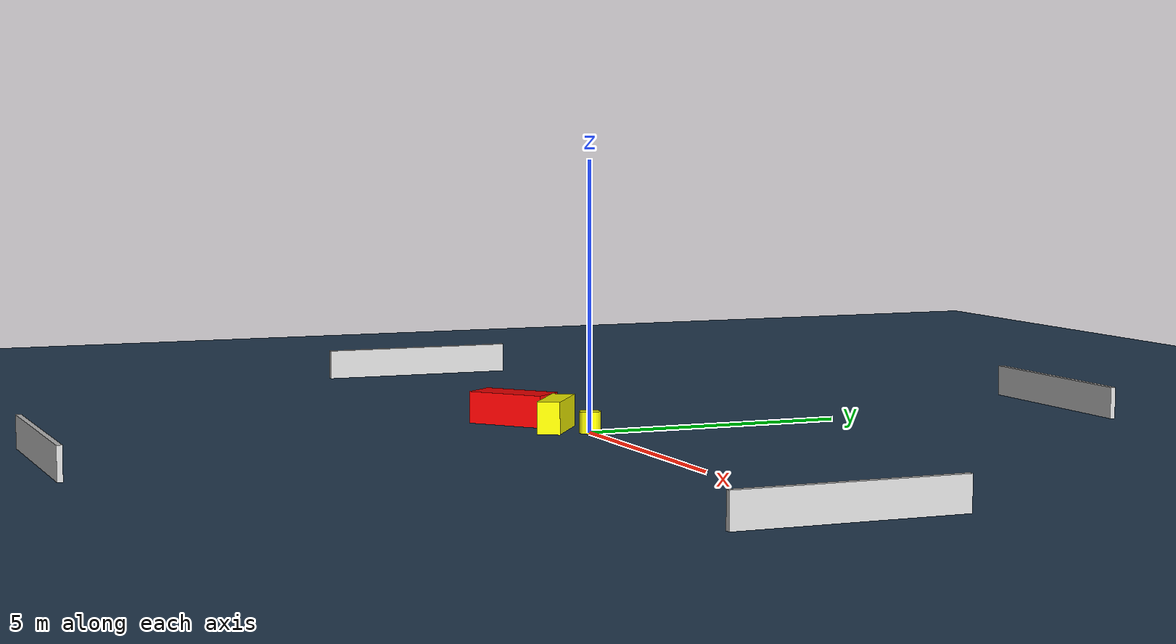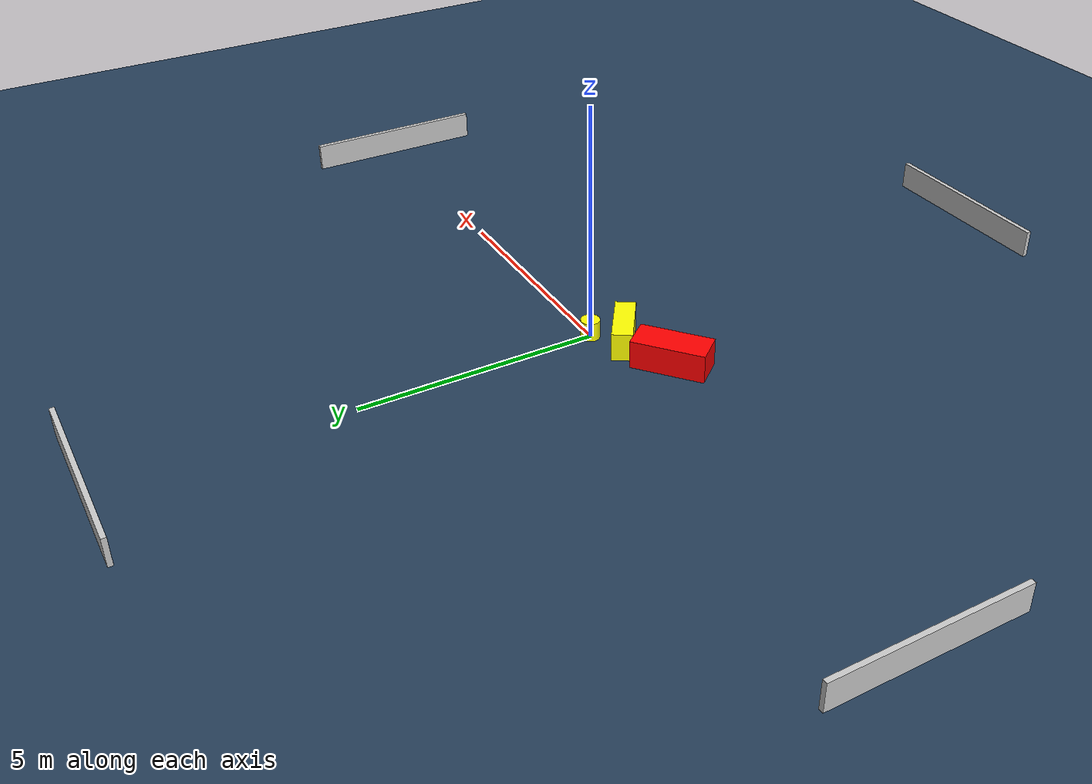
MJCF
<?xml version="1.0" ?>
<mujoco model="generated_environment">
  <option timestep="0.01" integrator="RK4" cone="elliptic"/>
  <default>
    <geom density="1"/>
  </default>
  <asset>
    <texture builtin="gradient" height="3072" name="skybox" rgb1="0.3 0.5 0.7" rgb2="0 0 0" type="skybox" width="512"/>
    <texture builtin="checker" height="300" name="groundplane" rgb1="0.2 0.3 0.4" rgb2="0.1 0.2 0.3" type="2d" width="300"/>
    <material name="groundplane" reflectance="0.2" texrepeat="5 5" texture="groundplane"/>
  </asset>
  <worldbody>
    <light dir="0 0 -1" directional="true" pos="0 0 1.5"/>
    <geom condim="3" friction="0.5 0.005 0.001" material="groundplane" name="floor" pos="0 0 0" size="0 0 0.05" type="plane"/>
    <body name="walls">
      <geom name="wall_1" condim="4" pos="-10.0 0.0 0.3" rgba="0.800000011920929 0.800000011920929 0.800000011920929 1.0" size="0.05 2.0 0.3" type="box"/>
      <geom name="wall_2" condim="4" pos="10.0 0.0 0.3" rgba="0.800000011920929 0.800000011920929 0.800000011920929 1.0" size="0.05 2.0 0.3" type="box"/>
      <geom name="wall_3" condim="4" pos="0.0 -10.0 0.3" rgba="0.800000011920929 0.800000011920929 0.800000011920929 1.0" size="2.0 0.05 0.3" type="box"/>
      <geom name="wall_4" condim="4" pos="0.0 10.0 0.3" rgba="0.800000011920929 0.800000011920929 0.800000011920929 1.0" size="2.0 0.05 0.3" type="box"/>
    </body>
    <body name="robot">
      <joint name="joint_x" type="slide" pos="0 0 0" axis="1 0 0"/>
      <joint name="joint_y" type="slide" pos="0 0 0" axis="0 1 0"/>
      <geom name="robot" type="cylinder" pos="0.0 0.0 0.2" size="0.2 0.2 0.0" mass="5.0" friction="1.0 0.005 0.0001" condim="4" rgba="1.0 1.0 0.0 1.0"/>
    </body>
    <body name="obstacle_1_movable">
      <geom name="obstacle_1_movable" condim="4" pos="-0.5626000294760644 -0.4417971245349222 0.3" euler="0 0 325.526266010209" friction="0.0 0.005 0.001" rgba="1.0 1.0 0.0 1.0" size="0.6139185884998064 0.21245471896908033 0.3" type="box" mass="0.1"/>
      <joint type="free"/>
    </body>
    <body name="obstacle_2_static">
      <geom name="obstacle_2_static" condim="4" pos="-1.7133782550463394 -0.8464735126519388 0.3" euler="0 0 219.22864125623443" friction="0.0 0.005 0.001" rgba="1.0 0.0 0.0 1.0" size="0.7613586425914081 0.338219702625213 0.3" type="box"/>
    </body>
  </worldbody>
  <actuator>
    <motor name="actuator_x" joint="joint_x" gear="1" ctrlrange="-1 1"/>
    <motor name="actuator_y" joint="joint_y" gear="1" ctrlrange="-1 1"/>
  </actuator>
</mujoco>
